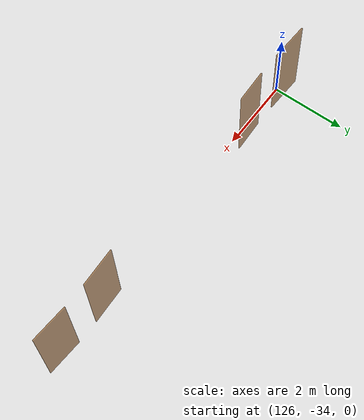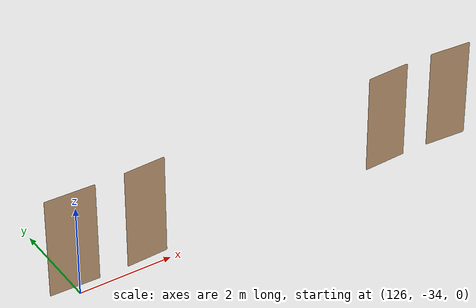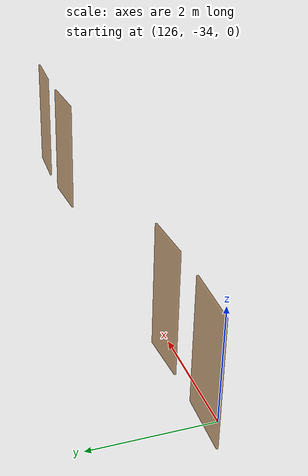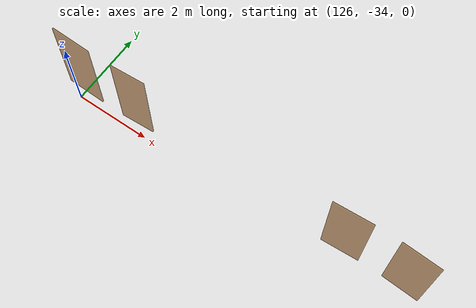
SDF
<sdf version="1.7">
 <world name="sim_world">
  <model name="puerta28">
   <pose>126.01508757610048 -33.778688903941855 0.0 0 0 -0.02857833146900446</pose>
   <link name="right">
    <pose>0 0 1.11 0 0 0</pose>
    <visual name="right_visual">
     <geometry><box><size>1.0545589963781905 0.03 2.2</size></box></geometry>
     <material>
      <ambient>0.5 0.25 0 0.6</ambient>
      <diffuse>0.5 0.25 0 0.6</diffuse>
      <pbr><metal><metalness>0.0</metalness></metal></pbr>
     </material>
    </visual>
    <collision name="right_collision">
     <geometry><box><size>1.0545589963781905 0.03 2.2</size></box></geometry>
     <surface><contact><collide_bitmask>0x02</collide_bitmask></contact></surface>
    </collision>
    <inertial>
     <mass>50.0</mass>
     <inertia><ixx>20.17041666666667</ixx><iyy>24.800394486842407</iyy><izz>4.637477820175735</izz></inertia>
    </inertial>
   </link>
   <joint name="right_joint" type="revolute">
    <parent>world</parent>
    <child>right</child>
    <axis><xyz>0 0 1</xyz><limit><lower>0</lower><upper>1.57</upper></limit></axis>
    <pose>0.5322794981890953 0 0 0 0 0</pose>
   </joint>
   <plugin name="register_component" filename="libregister_component.so">
    <component name="Door">
     <v_max_door>0.5</v_max_door>
     <a_max_door>0.3</a_max_door>
     <a_nom_door>0.15</a_nom_door>
     <dx_min_door>0.01</dx_min_door>
     <f_max_door>500.0</f_max_door>
     <ros_interface>true</ros_interface>
     <door name="puerta28" type="SwingDoor" left_joint_name="empty_joint" right_joint_name="right_joint"/>
    </component>
   </plugin>
  </model>
  <model name="puerta29">
   <pose>127.61893141590122 -33.771094627628 0.0 0 0 -3.0907873635063536</pose>
   <link name="right">
    <pose>0 0 1.11 0 0 0</pose>
    <visual name="right_visual">
     <geometry><box><size>0.8880828088218515 0.03 2.2</size></box></geometry>
     <material>
      <ambient>0.5 0.25 0 0.6</ambient>
      <diffuse>0.5 0.25 0 0.6</diffuse>
      <pbr><metal><metalness>0.0</metalness></metal></pbr>
     </material>
    </visual>
    <collision name="right_collision">
     <geometry><box><size>0.8880828088218515 0.03 2.2</size></box></geometry>
     <surface><contact><collide_bitmask>0x02</collide_bitmask></contact></surface>
    </collision>
    <inertial>
     <mass>50.0</mass>
     <inertia><ixx>20.17041666666667</ixx><iyy>23.45287948052046</iyy><izz>3.2899628138537893</izz></inertia>
    </inertial>
   </link>
   <joint name="right_joint" type="revolute">
    <parent>world</parent>
    <child>right</child>
    <axis><xyz>0 0 -1</xyz><limit><lower>0</lower><upper>1.57</upper></limit></axis>
    <pose>0.44904140441092577 0 0 0 0 0</pose>
   </joint>
   <plugin name="register_component" filename="libregister_component.so">
    <component name="Door">
     <v_max_door>0.5</v_max_door>
     <a_max_door>0.3</a_max_door>
     <a_nom_door>0.15</a_nom_door>
     <dx_min_door>0.01</dx_min_door>
     <f_max_door>500.0</f_max_door>
     <ros_interface>true</ros_interface>
     <door name="puerta29" type="SwingDoor" left_joint_name="empty_joint" right_joint_name="right_joint"/>
    </component>
   </plugin>
  </model>
  <model name="puerta31">
   <pose>133.30696022787032 -33.72153198221129 0.0 0 0 0.055539658106781346</pose>
   <link name="right">
    <pose>0 0 1.11 0 0 0</pose>
    <visual name="right_visual">
     <geometry><box><size>0.9540873743725855 0.03 2.2</size></box></geometry>
     <material>
      <ambient>0.5 0.25 0 0.6</ambient>
      <diffuse>0.5 0.25 0 0.6</diffuse>
      <pbr><metal><metalness>0.0</metalness></metal></pbr>
     </material>
    </visual>
    <collision name="right_collision">
     <geometry><box><size>0.9540873743725855 0.03 2.2</size></box></geometry>
     <surface><contact><collide_bitmask>0x02</collide_bitmask></contact></surface>
    </collision>
    <inertial>
     <mass>50.0</mass>
     <inertia><ixx>20.17041666666667</ixx><iyy>23.95951132473823</iyy><izz>3.796594658071559</izz></inertia>
    </inertial>
   </link>
   <joint name="right_joint" type="revolute">
    <parent>world</parent>
    <child>right</child>
    <axis><xyz>0 0 1</xyz><limit><lower>0</lower><upper>1.57</upper></limit></axis>
    <pose>0.48204368718629276 0 0 0 0 0</pose>
   </joint>
   <plugin name="register_component" filename="libregister_component.so">
    <component name="Door">
     <v_max_door>0.5</v_max_door>
     <a_max_door>0.3</a_max_door>
     <a_nom_door>0.15</a_nom_door>
     <dx_min_door>0.01</dx_min_door>
     <f_max_door>500.0</f_max_door>
     <ros_interface>true</ros_interface>
     <door name="puerta31" type="SwingDoor" left_joint_name="empty_joint" right_joint_name="right_joint"/>
    </component>
   </plugin>
  </model>
  <model name="puerta34">
   <pose>134.84876661379417 -33.71909171613814 0.0 0 0 3.089567569582924</pose>
   <link name="right">
    <pose>0 0 1.11 0 0 0</pose>
    <visual name="right_visual">
     <geometry><box><size>0.9252983344265415 0.03 2.2</size></box></geometry>
     <material>
      <ambient>0.5 0.25 0 0.6</ambient>
      <diffuse>0.5 0.25 0 0.6</diffuse>
      <pbr><metal><metalness>0.0</metalness></metal></pbr>
     </material>
    </visual>
    <collision name="right_collision">
     <geometry><box><size>0.9252983344265415 0.03 2.2</size></box></geometry>
     <surface><contact><collide_bitmask>0x02</collide_bitmask></contact></surface>
    </collision>
    <inertial>
     <mass>50.0</mass>
     <inertia><ixx>20.17041666666667</ixx><iyy>23.734070865385554</iyy><izz>3.571154198718883</izz></inertia>
    </inertial>
   </link>
   <joint name="right_joint" type="revolute">
    <parent>world</parent>
    <child>right</child>
    <axis><xyz>0 0 -1</xyz><limit><lower>0</lower><upper>1.57</upper></limit></axis>
    <pose>0.46764916721327077 0 0 0 0 0</pose>
   </joint>
   <plugin name="register_component" filename="libregister_component.so">
    <component name="Door">
     <v_max_door>0.5</v_max_door>
     <a_max_door>0.3</a_max_door>
     <a_nom_door>0.15</a_nom_door>
     <dx_min_door>0.01</dx_min_door>
     <f_max_door>500.0</f_max_door>
     <ros_interface>true</ros_interface>
     <door name="puerta34" type="SwingDoor" left_joint_name="empty_joint" right_joint_name="right_joint"/>
    </component>
   </plugin>
  </model>
 </world>
</sdf>
